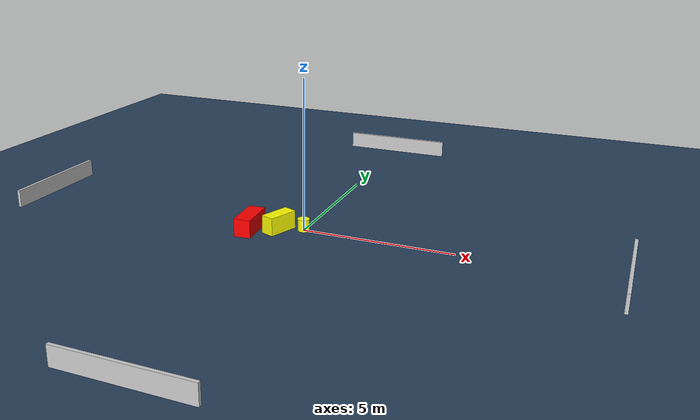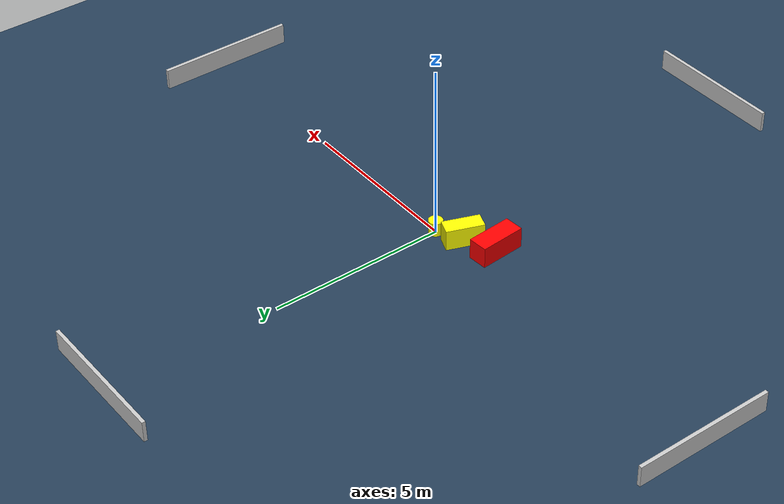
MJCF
<?xml version="1.0" ?>
<mujoco model="generated_environment">
  <option timestep="0.01" integrator="RK4" cone="elliptic"/>
  <default>
    <geom density="1"/>
  </default>
  <asset>
    <texture builtin="gradient" height="3072" name="skybox" rgb1="0.3 0.5 0.7" rgb2="0 0 0" type="skybox" width="512"/>
    <texture builtin="checker" height="300" name="groundplane" rgb1="0.2 0.3 0.4" rgb2="0.1 0.2 0.3" type="2d" width="300"/>
    <material name="groundplane" reflectance="0.2" texrepeat="5 5" texture="groundplane"/>
  </asset>
  <worldbody>
    <light dir="0 0 -1" directional="true" pos="0 0 1.5"/>
    <geom condim="3" friction="0.5 0.005 0.001" material="groundplane" name="floor" pos="0 0 0" size="0 0 0.05" type="plane"/>
    <body name="walls">
      <geom name="wall_1" condim="4" pos="-10.0 0.0 0.3" rgba="0.800000011920929 0.800000011920929 0.800000011920929 1.0" size="0.05 2.0 0.3" type="box"/>
      <geom name="wall_2" condim="4" pos="10.0 0.0 0.3" rgba="0.800000011920929 0.800000011920929 0.800000011920929 1.0" size="0.05 2.0 0.3" type="box"/>
      <geom name="wall_3" condim="4" pos="0.0 -10.0 0.3" rgba="0.800000011920929 0.800000011920929 0.800000011920929 1.0" size="2.0 0.05 0.3" type="box"/>
      <geom name="wall_4" condim="4" pos="0.0 10.0 0.3" rgba="0.800000011920929 0.800000011920929 0.800000011920929 1.0" size="2.0 0.05 0.3" type="box"/>
    </body>
    <body name="robot">
      <joint name="joint_x" type="slide" pos="0 0 0" axis="1 0 0"/>
      <joint name="joint_y" type="slide" pos="0 0 0" axis="0 1 0"/>
      <geom name="robot" type="cylinder" pos="0.0 0.0 0.2" size="0.2 0.2 0.0" mass="5.0" friction="1.0 0.005 0.0001" condim="4" rgba="1.0 1.0 0.0 1.0"/>
    </body>
    <body name="obstacle_1_movable">
      <geom name="obstacle_1_movable" condim="4" pos="-0.7406988885201455 -0.3214366338492969 0.3" euler="0 0 339.19621028646577" friction="0.0 0.005 0.001" rgba="1.0 1.0 0.0 1.0" size="0.22935858281795407 0.5288953101658949 0.3" type="box" mass="0.1"/>
      <joint type="free"/>
    </body>
    <body name="obstacle_2_static">
      <geom name="obstacle_2_static" condim="4" pos="-1.6001793437131073 -0.7155892982691592 0.3" euler="0 0 4.21481208680639" friction="0.0 0.005 0.001" rgba="1.0 0.0 0.0 1.0" size="0.2770938496353448 0.6495585322537543 0.3" type="box"/>
    </body>
  </worldbody>
  <actuator>
    <motor name="actuator_x" joint="joint_x" gear="1" ctrlrange="-1 1"/>
    <motor name="actuator_y" joint="joint_y" gear="1" ctrlrange="-1 1"/>
  </actuator>
</mujoco>
